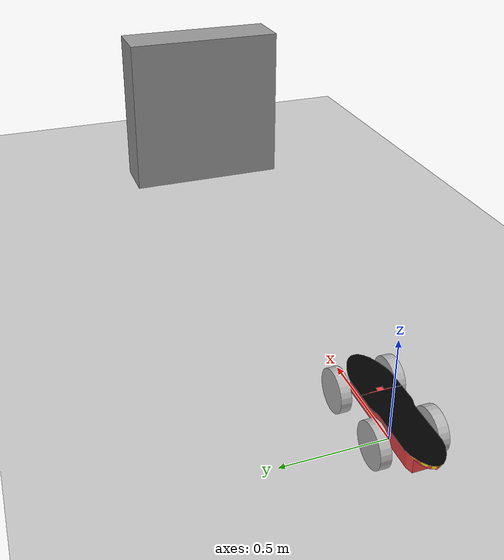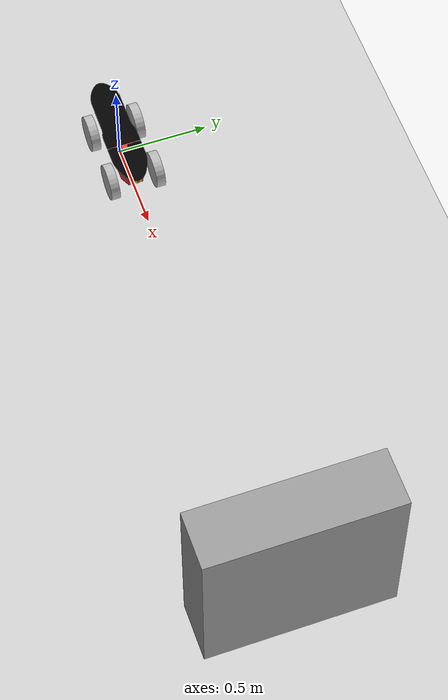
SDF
<sdf version="1.6">
 <world name="default">
  <light name="sun" type="directional">
   <pose>0 0 10 0 -0 0</pose>
   <diffuse>0.8 0.8 0.8 1</diffuse>
   <specular>0.2 0.2 0.2 1</specular>
   <attenuation>
    <range>1000</range>
    <constant>0.9</constant>
    <linear>0.01</linear>
    <quadratic>0.001</quadratic>
   </attenuation>
   <direction>-0.5 0.1 -0.9</direction>
  </light>
  <model name="ground_plane">
   <static>1</static>
   <link name="link">
    <collision name="collision">
     <geometry><plane><normal>0 0 1</normal><size>100 100</size></plane></geometry>
     <surface><friction><ode><mu>100</mu><mu2>50</mu2></ode></friction></surface>
    </collision>
    <visual name="visual">
     <cast_shadows>0</cast_shadows>
     <geometry><plane><normal>0 0 1</normal><size>100 100</size></plane></geometry>
     <material>
      <script><uri>file://media/materials/scripts/gazebo.material</uri><name>Gazebo/Grey</name></script>
     </material>
    </visual>
   </link>
  </model>
  <gravity>0 0 -9.8</gravity>
  <magnetic_field>6e-06 2.3e-05 -4.2e-05</magnetic_field>
  <atmosphere type="adiabatic"/>
  <physics name="default_physics" default="0" type="ode">
   <max_step_size>0.001</max_step_size>
   <real_time_factor>1</real_time_factor>
   <real_time_update_rate>1000</real_time_update_rate>
  </physics>
  <scene><ambient>0.4 0.4 0.4 1</ambient><background>0.7 0.7 0.7 1</background><shadows>1</shadows></scene>
  <spherical_coordinates>
   <surface_model>EARTH_WGS84</surface_model>
   <latitude_deg>0</latitude_deg>
   <longitude_deg>0</longitude_deg>
   <elevation>0</elevation>
   <heading_deg>0</heading_deg>
  </spherical_coordinates>
  <model name="unit_box">
   <pose>2.88406 -0.052854 0.5 0 -0 0</pose>
   <link name="link">
    <inertial>
     <mass>10</mass>
     <inertia>
      <ixx>0.166667</ixx>
      <ixy>0</ixy>
      <ixz>0</ixz>
      <iyy>0.166667</iyy>
      <iyz>0</iyz>
      <izz>0.166667</izz>
     </inertia>
    </inertial>
    <collision name="collision"><geometry><box><size>0.3 1 1</size></box></geometry></collision>
    <visual name="visual">
     <geometry><box><size>0.3 1 1</size></box></geometry>
     <material>
      <script><name>Gazebo/Grey</name><uri>file://media/materials/scripts/gazebo.material</uri></script>
     </material>
    </visual>
   </link>
  </model>
  <model name="colores">
   <static>false</static>
   <link name="chassis">
    <pose>0 0 .1 0 0 0</pose>
    <collision name="collision"><geometry><box><size>.6 .2 .1</size></box></geometry></collision>
    <visual name="visual">
     <pose>0 0 0.05 0 0 0</pose>
     <geometry><mesh><uri>model://pioneer2dx/meshes/chassis.dae</uri><scale>1.4 0.5 0.5</scale></mesh></geometry>
    </visual>
   </link>
   <link name="left_wheel">
    <pose>0.25 0.13 0.1 0 1.5707 1.5707</pose>
    <collision name="collision">
     <geometry><cylinder><radius>.1</radius><length>.05</length></cylinder></geometry>
    </collision>
    <visual name="visual">
     <geometry><cylinder><radius>.1</radius><length>.05</length></cylinder></geometry>
    </visual>
   </link>
   <link name="right_wheel">
    <pose>0.25 -0.13 0.1 0 1.5707 1.5707</pose>
    <collision name="collision">
     <geometry><cylinder><radius>.1</radius><length>.05</length></cylinder></geometry>
    </collision>
    <visual name="visual">
     <geometry><cylinder><radius>.1</radius><length>.05</length></cylinder></geometry>
    </visual>
   </link>
   <joint type="revolute" name="left_wheel_hinge">
    <pose>0 0 -0.03 0 0 0</pose>
    <child>left_wheel</child>
    <parent>chassis</parent>
    <axis><xyz>0 0 1</xyz></axis>
   </joint>
   <joint type="revolute" name="right_wheel_hinge">
    <pose>0 0 0.03 0 0 0</pose>
    <child>right_wheel</child>
    <parent>chassis</parent>
    <axis><xyz>0 0 1</xyz></axis>
   </joint>
   <link name="left_wheel_back">
    <pose>-0.1 0.13 0.1 0 1.5707 1.5707</pose>
    <collision name="collision">
     <geometry><cylinder><radius>.1</radius><length>.05</length></cylinder></geometry>
    </collision>
    <visual name="visual">
     <geometry><cylinder><radius>.1</radius><length>.05</length></cylinder></geometry>
    </visual>
   </link>
   <link name="right_wheel_back">
    <pose>-0.1 -0.13 0.1 0 1.5707 1.5707</pose>
    <collision name="collision">
     <geometry><cylinder><radius>.1</radius><length>.05</length></cylinder></geometry>
    </collision>
    <visual name="visual">
     <geometry><cylinder><radius>.1</radius><length>.05</length></cylinder></geometry>
    </visual>
   </link>
   <joint type="revolute" name="left_wheel_hinge_back">
    <pose>0 0 -0.03 0 0 0</pose>
    <child>left_wheel_back</child>
    <parent>chassis</parent>
    <axis><xyz>0 0 1</xyz></axis>
   </joint>
   <joint type="revolute" name="right_wheel_hinge_back">
    <pose>0 0 0.03 0 0 0</pose>
    <child>right_wheel_back</child>
    <parent>chassis</parent>
    <axis><xyz>0 0 1</xyz></axis>
   </joint>
  </model>
 </world>
</sdf>
